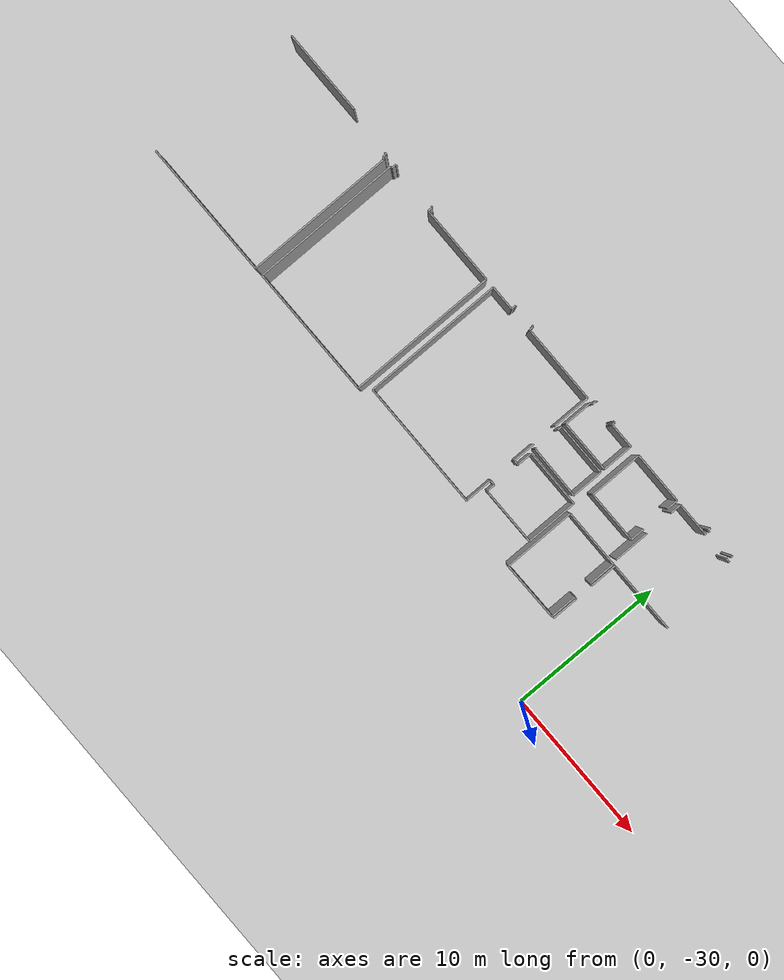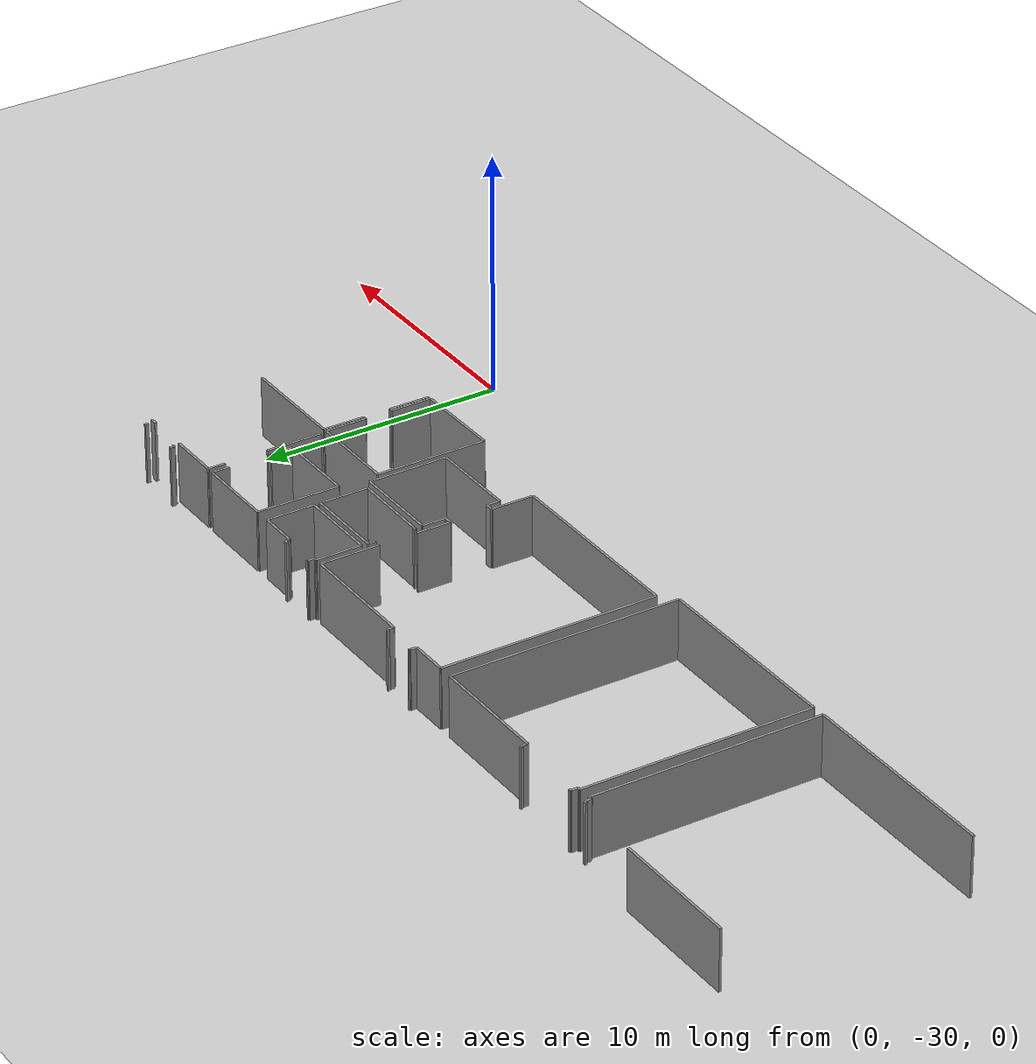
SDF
<sdf version="1.6">
 <world name="default">
  <model name="ground_plane">
   <static>1</static>
   <link name="link">
    <collision name="collision">
     <geometry><plane><normal>0 0 1</normal><size>100 100</size></plane></geometry>
     <surface><friction><ode><mu>100</mu><mu2>50</mu2></ode></friction></surface>
    </collision>
    <visual name="visual">
     <cast_shadows>0</cast_shadows>
     <geometry><plane><normal>0 0 1</normal><size>100 100</size></plane></geometry>
     <material>
      <script><uri>file://media/materials/scripts/gazebo.material</uri><name>Gazebo/Grey</name></script>
     </material>
    </visual>
   </link>
  </model>
  <model name="50045366">
   <static>1</static>
   <link name="Wall_91">
    <collision name="Wall_91_Collision">
     <geometry><box><size>5.46569966087 0.1 2.5</size></box></geometry>
     <pose>2.73284983044 0 1.25 0 0 0</pose>
    </collision>
    <visual name="Wall_91_Visual">
     <pose>2.73284983044 0 1.25 0 0 0</pose>
     <geometry><box><size>5.46569966087 0.1 2.5</size></box></geometry>
     <material>
      <script><uri>file://media/materials/scripts/gazebo.material</uri><name>Gazebo/Grey</name></script>
      <ambient>1 1 1 1</ambient>
     </material>
    </visual>
    <pose>22.1760170708 -40.7215709187 0 0 0 3.14159265359</pose>
   </link>
   <link name="Wall_123">
    <collision name="Wall_123_Collision">
     <geometry><box><size>0.133619539952 0.1 2.5</size></box></geometry>
     <pose>0.0668097699762 0 1.25 0 0 0</pose>
    </collision>
    <visual name="Wall_123_Visual">
     <pose>0.0668097699762 0 1.25 0 0 0</pose>
     <geometry><box><size>0.133619539952 0.1 2.5</size></box></geometry>
     <material>
      <script><uri>file://media/materials/scripts/gazebo.material</uri><name>Gazebo/Grey</name></script>
      <ambient>1 1 1 1</ambient>
     </material>
    </visual>
    <pose>25.1390176678 -40.9857616441 0 0 0 0.0</pose>
   </link>
   <link name="Wall_124">
    <collision name="Wall_124_Collision">
     <geometry><box><size>0.262412518576 0.1 2.5</size></box></geometry>
     <pose>0.131206259288 0 1.25 0 0 0</pose>
    </collision>
    <visual name="Wall_124_Visual">
     <pose>0.131206259288 0 1.25 0 0 0</pose>
     <geometry><box><size>0.262412518576 0.1 2.5</size></box></geometry>
     <material>
      <script><uri>file://media/materials/scripts/gazebo.material</uri><name>Gazebo/Grey</name></script>
      <ambient>1 1 1 1</ambient>
     </material>
    </visual>
    <pose>25.2726372077 -40.9857616441 0 0 0 -1.57079632679</pose>
   </link>
   <link name="Wall_125">
    <collision name="Wall_125_Collision">
     <geometry><box><size>0.133619539952 0.1 2.5</size></box></geometry>
     <pose>0.0668097699762 0 1.25 0 0 0</pose>
    </collision>
    <visual name="Wall_125_Visual">
     <pose>0.0668097699762 0 1.25 0 0 0</pose>
     <geometry><box><size>0.133619539952 0.1 2.5</size></box></geometry>
     <material>
      <script><uri>file://media/materials/scripts/gazebo.material</uri><name>Gazebo/Grey</name></script>
      <ambient>1 1 1 1</ambient>
     </material>
    </visual>
    <pose>25.2726372077 -41.2481741627 0 0 0 0.0</pose>
   </link>
   <link name="Wall_126">
    <collision name="Wall_126_Collision">
     <geometry><box><size>9.48901957298 0.1 2.5</size></box></geometry>
     <pose>4.74450978649 0 1.25 0 0 0</pose>
    </collision>
    <visual name="Wall_126_Visual">
     <pose>4.74450978649 0 1.25 0 0 0</pose>
     <geometry><box><size>9.48901957298 0.1 2.5</size></box></geometry>
     <material>
      <script><uri>file://media/materials/scripts/gazebo.material</uri><name>Gazebo/Grey</name></script>
      <ambient>1 1 1 1</ambient>
     </material>
    </visual>
    <pose>25.4062567477 -41.2481741627 0 0 0 -1.57079632679</pose>
   </link>
   <link name="Wall_127">
    <collision name="Wall_127_Collision">
     <geometry><box><size>8.69593944998 0.1 2.5</size></box></geometry>
     <pose>4.34796972499 0 1.25 0 0 0</pose>
    </collision>
    <visual name="Wall_127_Visual">
     <pose>4.34796972499 0 1.25 0 0 0</pose>
     <geometry><box><size>8.69593944998 0.1 2.5</size></box></geometry>
     <material>
      <script><uri>file://media/materials/scripts/gazebo.material</uri><name>Gazebo/Grey</name></script>
      <ambient>1 1 1 1</ambient>
     </material>
    </visual>
    <pose>25.4062567477 -50.7371937356 0 0 0 -3.14143198521</pose>
   </link>
   <link name="Wall_128">
    <collision name="Wall_128_Collision">
     <geometry><box><size>9.47085646061 0.1 2.5</size></box></geometry>
     <pose>4.7354282303 0 1.25 0 0 0</pose>
    </collision>
    <visual name="Wall_128_Visual">
     <pose>4.7354282303 0 1.25 0 0 0</pose>
     <geometry><box><size>9.47085646061 0.1 2.5</size></box></geometry>
     <material>
      <script><uri>file://media/materials/scripts/gazebo.material</uri><name>Gazebo/Grey</name></script>
      <ambient>1 1 1 1</ambient>
     </material>
    </visual>
    <pose>25.9512771335 -50.7154742097 0 0 0 1.57079632679</pose>
   </link>
   <link name="Wall_129">
    <collision name="Wall_129_Collision">
     <geometry><box><size>0.108597629904 0.1 2.5</size></box></geometry>
     <pose>0.0542988149522 0 1.25 0 0 0</pose>
    </collision>
    <visual name="Wall_129_Visual">
     <pose>0.0542988149522 0 1.25 0 0 0</pose>
     <geometry><box><size>0.108597629904 0.1 2.5</size></box></geometry>
     <material>
      <script><uri>file://media/materials/scripts/gazebo.material</uri><name>Gazebo/Grey</name></script>
      <ambient>1 1 1 1</ambient>
     </material>
    </visual>
    <pose>25.9512771335 -41.244617749 0 0 0 0.0</pose>
   </link>
   <link name="Wall_130">
    <collision name="Wall_130_Collision">
     <geometry><box><size>0.284132044557 0.1 2.5</size></box></geometry>
     <pose>0.142066022278 0 1.25 0 0 0</pose>
    </collision>
    <visual name="Wall_130_Visual">
     <pose>0.142066022278 0 1.25 0 0 0</pose>
     <geometry><box><size>0.284132044557 0.1 2.5</size></box></geometry>
     <material>
      <script><uri>file://media/materials/scripts/gazebo.material</uri><name>Gazebo/Grey</name></script>
      <ambient>1 1 1 1</ambient>
     </material>
    </visual>
    <pose>26.0598747634 -41.244617749 0 0 0 1.57079632679</pose>
   </link>
   <link name="Wall_131">
    <collision name="Wall_131_Collision">
     <geometry><box><size>0.0947530197762 0.1 2.5</size></box></geometry>
     <pose>0.0473765098881 0 1.25 0 0 0</pose>
    </collision>
    <visual name="Wall_131_Visual">
     <pose>0.0473765098881 0 1.25 0 0 0</pose>
     <geometry><box><size>0.0947530197762 0.1 2.5</size></box></geometry>
     <material>
      <script><uri>file://media/materials/scripts/gazebo.material</uri><name>Gazebo/Grey</name></script>
      <ambient>1 1 1 1</ambient>
     </material>
    </visual>
    <pose>26.0598747634 -40.9604857045 0 0 0 0.0</pose>
   </link>
   <link name="Wall_132">
    <collision name="Wall_132_Collision">
     <geometry><box><size>0.115202398039 0.1 2.5</size></box></geometry>
     <pose>0.0576011990195 0 1.25 0 0 0</pose>
    </collision>
    <visual name="Wall_132_Visual">
     <pose>0.0576011990195 0 1.25 0 0 0</pose>
     <geometry><box><size>0.115202398039 0.1 2.5</size></box></geometry>
     <material>
      <script><uri>file://media/materials/scripts/gazebo.material</uri><name>Gazebo/Grey</name></script>
      <ambient>1 1 1 1</ambient>
     </material>
    </visual>
    <pose>29.1197876313 -40.9604857045 0 0 0 0.0</pose>
   </link>
   <link name="Wall_133">
    <collision name="Wall_133_Collision">
     <geometry><box><size>0.289339650201 0.1 2.5</size></box></geometry>
     <pose>0.144669825101 0 1.25 0 0 0</pose>
    </collision>
    <visual name="Wall_133_Visual">
     <pose>0.144669825101 0 1.25 0 0 0</pose>
     <geometry><box><size>0.289339650201 0.1 2.5</size></box></geometry>
     <material>
      <script><uri>file://media/materials/scripts/gazebo.material</uri><name>Gazebo/Grey</name></script>
      <ambient>1 1 1 1</ambient>
     </material>
    </visual>
    <pose>29.2349900293 -40.9604857045 0 0 0 -1.57079632679</pose>
   </link>
   <link name="Wall_134">
    <collision name="Wall_134_Collision">
     <geometry><box><size>5.03257928897 0.1 2.5</size></box></geometry>
     <pose>2.51628964449 0 1.25 0 0 0</pose>
    </collision>
    <visual name="Wall_134_Visual">
     <pose>2.51628964449 0 1.25 0 0 0</pose>
     <geometry><box><size>5.03257928897 0.1 2.5</size></box></geometry>
     <material>
      <script><uri>file://media/materials/scripts/gazebo.material</uri><name>Gazebo/Grey</name></script>
      <ambient>1 1 1 1</ambient>
     </material>
    </visual>
    <pose>29.2349900293 -41.2498253547 0 0 0 0.0</pose>
   </link>
   <link name="Wall_135">
    <collision name="Wall_135_Collision">
     <geometry><box><size>9.4582819982 0.1 2.5</size></box></geometry>
     <pose>4.7291409991 0 1.25 0 0 0</pose>
    </collision>
    <visual name="Wall_135_Visual">
     <pose>4.7291409991 0 1.25 0 0 0</pose>
     <geometry><box><size>9.4582819982 0.1 2.5</size></box></geometry>
     <material>
      <script><uri>file://media/materials/scripts/gazebo.material</uri><name>Gazebo/Grey</name></script>
      <ambient>1 1 1 1</ambient>
     </material>
    </visual>
    <pose>34.2675693183 -41.2498253547 0 0 0 -1.57079632679</pose>
   </link>
   <link name="Wall_136">
    <collision name="Wall_136_Collision">
     <geometry><box><size>8.31629544769 0.1 2.5</size></box></geometry>
     <pose>4.15814772384 0 1.25 0 0 0</pose>
    </collision>
    <visual name="Wall_136_Visual">
     <pose>4.15814772384 0 1.25 0 0 0</pose>
     <geometry><box><size>8.31629544769 0.1 2.5</size></box></geometry>
     <material>
      <script><uri>file://media/materials/scripts/gazebo.material</uri><name>Gazebo/Grey</name></script>
      <ambient>1 1 1 1</ambient>
     </material>
    </visual>
    <pose>34.2675693183 -50.7081073529 0 0 0 -3.14070681953</pose>
   </link>
   <link name="Wall_137">
    <collision name="Wall_137_Collision">
     <geometry><box><size>8.89141507157 0.1 2.5</size></box></geometry>
     <pose>4.44570753579 0 1.25 0 0 0</pose>
    </collision>
    <visual name="Wall_137_Visual">
     <pose>4.44570753579 0 1.25 0 0 0</pose>
     <geometry><box><size>8.89141507157 0.1 2.5</size></box></geometry>
     <material>
      <script><uri>file://media/materials/scripts/gazebo.material</uri><name>Gazebo/Grey</name></script>
      <ambient>1 1 1 1</ambient>
     </material>
    </visual>
    <pose>34.8684762038 -50.1423835592 0 0 0 1.57079632679</pose>
   </link>
   <link name="Wall_138">
    <collision name="Wall_138_Collision">
     <geometry><box><size>1.59835388856 0.1 2.5</size></box></geometry>
     <pose>0.799176944279 0 1.25 0 0 0</pose>
    </collision>
    <visual name="Wall_138_Visual">
     <pose>0.799176944279 0 1.25 0 0 0</pose>
     <geometry><box><size>1.59835388856 0.1 2.5</size></box></geometry>
     <material>
      <script><uri>file://media/materials/scripts/gazebo.material</uri><name>Gazebo/Grey</name></script>
      <ambient>1 1 1 1</ambient>
     </material>
    </visual>
    <pose>34.8684762038 -41.2509684876 0 0 0 0.0</pose>
   </link>
   <link name="Wall_139">
    <collision name="Wall_139_Collision">
     <geometry><box><size>0.277781305966 0.1 2.5</size></box></geometry>
     <pose>0.138890652983 0 1.25 0 0 0</pose>
    </collision>
    <visual name="Wall_139_Visual">
     <pose>0.138890652983 0 1.25 0 0 0</pose>
     <geometry><box><size>0.277781305966 0.1 2.5</size></box></geometry>
     <material>
      <script><uri>file://media/materials/scripts/gazebo.material</uri><name>Gazebo/Grey</name></script>
      <ambient>1 1 1 1</ambient>
     </material>
    </visual>
    <pose>36.4668300923 -41.2509684876 0 0 0 1.57079632679</pose>
   </link>
   <link name="Wall_140">
    <collision name="Wall_140_Collision">
     <geometry><box><size>0.0694770801844 0.1 2.5</size></box></geometry>
     <pose>0.0347385400922 0 1.25 0 0 0</pose>
    </collision>
    <visual name="Wall_140_Visual">
     <pose>0.0347385400922 0 1.25 0 0 0</pose>
     <geometry><box><size>0.0694770801844 0.1 2.5</size></box></geometry>
     <material>
      <script><uri>file://media/materials/scripts/gazebo.material</uri><name>Gazebo/Grey</name></script>
      <ambient>1 1 1 1</ambient>
     </material>
    </visual>
    <pose>36.4668300923 -40.9731871817 0 0 0 0.0</pose>
   </link>
   <link name="Wall_141">
    <collision name="Wall_141_Collision">
     <geometry><box><size>0.101738832226 0.1 2.5</size></box></geometry>
     <pose>0.0508694161131 0 1.25 0 0 0</pose>
    </collision>
    <visual name="Wall_141_Visual">
     <pose>0.0508694161131 0 1.25 0 0 0</pose>
     <geometry><box><size>0.101738832226 0.1 2.5</size></box></geometry>
     <material>
      <script><uri>file://media/materials/scripts/gazebo.material</uri><name>Gazebo/Grey</name></script>
      <ambient>1 1 1 1</ambient>
     </material>
    </visual>
    <pose>37.9120041661 -40.9731871817 0 0 0 0.0</pose>
   </link>
   <link name="Wall_142">
    <collision name="Wall_142_Collision">
     <geometry><box><size>0.27244668555 0.1 2.5</size></box></geometry>
     <pose>0.136223342775 0 1.25 0 0 0</pose>
    </collision>
    <visual name="Wall_142_Visual">
     <pose>0.136223342775 0 1.25 0 0 0</pose>
     <geometry><box><size>0.27244668555 0.1 2.5</size></box></geometry>
     <material>
      <script><uri>file://media/materials/scripts/gazebo.material</uri><name>Gazebo/Grey</name></script>
      <ambient>1 1 1 1</ambient>
     </material>
    </visual>
    <pose>38.0137429983 -40.9731871817 0 0 0 -1.57079632679</pose>
   </link>
   <link name="Wall_143">
    <collision name="Wall_143_Collision">
     <geometry><box><size>5.03981913096 0.1 2.5</size></box></geometry>
     <pose>2.51990956548 0 1.25 0 0 0</pose>
    </collision>
    <visual name="Wall_143_Visual">
     <pose>2.51990956548 0 1.25 0 0 0</pose>
     <geometry><box><size>5.03981913096 0.1 2.5</size></box></geometry>
     <material>
      <script><uri>file://media/materials/scripts/gazebo.material</uri><name>Gazebo/Grey</name></script>
      <ambient>1 1 1 1</ambient>
     </material>
    </visual>
    <pose>38.0137429983 -41.2456338672 0 0 0 0.0</pose>
   </link>
   <link name="Wall_144">
    <collision name="Wall_144_Collision">
     <geometry><box><size>2.41823424064 0.1 2.5</size></box></geometry>
     <pose>1.20911712032 0 1.25 0 0 0</pose>
    </collision>
    <visual name="Wall_144_Visual">
     <pose>1.20911712032 0 1.25 0 0 0</pose>
     <geometry><box><size>2.41823424064 0.1 2.5</size></box></geometry>
     <material>
      <script><uri>file://media/materials/scripts/gazebo.material</uri><name>Gazebo/Grey</name></script>
      <ambient>1 1 1 1</ambient>
     </material>
    </visual>
    <pose>43.0535621293 -41.2456338672 0 0 0 -1.57079632679</pose>
   </link>
   <link name="Wall_145">
    <collision name="Wall_145_Collision">
     <geometry><box><size>1.41151515921 0.1 2.5</size></box></geometry>
     <pose>0.705757579607 0 1.25 0 0 0</pose>
    </collision>
    <visual name="Wall_145_Visual">
     <pose>0.705757579607 0 1.25 0 0 0</pose>
     <geometry><box><size>1.41151515921 0.1 2.5</size></box></geometry>
     <material>
      <script><uri>file://media/materials/scripts/gazebo.material</uri><name>Gazebo/Grey</name></script>
      <ambient>1 1 1 1</ambient>
     </material>
    </visual>
    <pose>43.0535621293 -45.2397403818 0 0 0 -1.57079632679</pose>
   </link>
   <link name="Wall_146">
    <collision name="Wall_146_Collision">
     <geometry><box><size>0.315885737511 0.1 2.5</size></box></geometry>
     <pose>0.157942868756 0 1.25 0 0 0</pose>
    </collision>
    <visual name="Wall_146_Visual">
     <pose>0.157942868756 0 1.25 0 0 0</pose>
     <geometry><box><size>0.315885737511 0.1 2.5</size></box></geometry>
     <material>
      <script><uri>file://media/materials/scripts/gazebo.material</uri><name>Gazebo/Grey</name></script>
      <ambient>1 1 1 1</ambient>
     </material>
    </visual>
    <pose>43.0535621293 -46.651255541 0 0 0 0.0</pose>
   </link>
   <link name="Wall_147">
    <collision name="Wall_147_Collision">
     <geometry><box><size>0.978013742998 0.1 2.5</size></box></geometry>
     <pose>0.489006871499 0 1.25 0 0 0</pose>
    </collision>
    <visual name="Wall_147_Visual">
     <pose>0.489006871499 0 1.25 0 0 0</pose>
     <geometry><box><size>0.978013742998 0.1 2.5</size></box></geometry>
     <material>
      <script><uri>file://media/materials/scripts/gazebo.material</uri><name>Gazebo/Grey</name></script>
      <ambient>1 1 1 1</ambient>
     </material>
    </visual>
    <pose>43.3694478668 -46.651255541 0 0 0 1.57079632679</pose>
   </link>
   <link name="Wall_148">
    <collision name="Wall_148_Collision">
     <geometry><box><size>3.6961298599 0.1 2.5</size></box></geometry>
     <pose>1.84806492995 0 1.25 0 0 0</pose>
    </collision>
    <visual name="Wall_148_Visual">
     <pose>1.84806492995 0 1.25 0 0 0</pose>
     <geometry><box><size>3.6961298599 0.1 2.5</size></box></geometry>
     <material>
      <script><uri>file://media/materials/scripts/gazebo.material</uri><name>Gazebo/Grey</name></script>
      <ambient>1 1 1 1</ambient>
     </material>
    </visual>
    <pose>43.3694478668 -45.673241798 0 0 0 0.0</pose>
   </link>
   <link name="Wall_149">
    <collision name="Wall_149_Collision">
     <geometry><box><size>3.26427963572 0.1 2.5</size></box></geometry>
     <pose>1.63213981786 0 1.25 0 0 0</pose>
    </collision>
    <visual name="Wall_149_Visual">
     <pose>1.63213981786 0 1.25 0 0 0</pose>
     <geometry><box><size>3.26427963572 0.1 2.5</size></box></geometry>
     <material>
      <script><uri>file://media/materials/scripts/gazebo.material</uri><name>Gazebo/Grey</name></script>
      <ambient>1 1 1 1</ambient>
     </material>
    </visual>
    <pose>47.0655777267 -45.673241798 0 0 0 -1.57079632679</pose>
   </link>
   <link name="Wall_150">
    <collision name="Wall_150_Collision">
     <geometry><box><size>3.69485971218 0.1 2.5</size></box></geometry>
     <pose>1.84742985609 0 1.25 0 0 0</pose>
    </collision>
    <visual name="Wall_150_Visual">
     <pose>1.84742985609 0 1.25 0 0 0</pose>
     <geometry><box><size>3.69485971218 0.1 2.5</size></box></geometry>
     <material>
      <script><uri>file://media/materials/scripts/gazebo.material</uri><name>Gazebo/Grey</name></script>
      <ambient>1 1 1 1</ambient>
     </material>
    </visual>
    <pose>47.0655777267 -48.9375214337 0 0 0 3.14159265359</pose>
   </link>
   <link name="Wall_151">
    <collision name="Wall_151_Collision">
     <geometry><box><size>0.540574868857 0.1 2.5</size></box></geometry>
     <pose>0.270287434429 0 1.25 0 0 0</pose>
    </collision>
    <visual name="Wall_151_Visual">
     <pose>0.270287434429 0 1.25 0 0 0</pose>
     <geometry><box><size>0.540574868857 0.1 2.5</size></box></geometry>
     <material>
      <script><uri>file://media/materials/scripts/gazebo.material</uri><name>Gazebo/Grey</name></script>
      <ambient>1 1 1 1</ambient>
     </material>
    </visual>
    <pose>43.3707180145 -48.9375214337 0 0 0 1.57079632679</pose>
   </link>
   <link name="Wall_152">
    <collision name="Wall_152_Collision">
     <geometry><box><size>0.335064968056 0.1 2.5</size></box></geometry>
     <pose>0.167532484028 0 1.25 0 0 0</pose>
    </collision>
    <visual name="Wall_152_Visual">
     <pose>0.167532484028 0 1.25 0 0 0</pose>
     <geometry><box><size>0.335064968056 0.1 2.5</size></box></geometry>
     <material>
      <script><uri>file://media/materials/scripts/gazebo.material</uri><name>Gazebo/Grey</name></script>
      <ambient>1 1 1 1</ambient>
     </material>
    </visual>
    <pose>43.3707180145 -48.3969465649 0 0 0 3.14159265359</pose>
   </link>
   <link name="Wall_153">
    <collision name="Wall_153_Collision">
     <geometry><box><size>1.75991667831 0.1 2.5</size></box></geometry>
     <pose>0.879958339155 0 1.25 0 0 0</pose>
    </collision>
    <visual name="Wall_153_Visual">
     <pose>0.879958339155 0 1.25 0 0 0</pose>
     <geometry><box><size>1.75991667831 0.1 2.5</size></box></geometry>
     <material>
      <script><uri>file://media/materials/scripts/gazebo.material</uri><name>Gazebo/Grey</name></script>
      <ambient>1 1 1 1</ambient>
     </material>
    </visual>
    <pose>43.0356530464 -48.3969465649 0 0 0 -1.57079632679</pose>
   </link>
   <link name="Wall_154">
    <collision name="Wall_154_Collision">
     <geometry><box><size>8.16718967826 0.1 2.5</size></box></geometry>
     <pose>4.08359483913 0 1.25 0 0 0</pose>
    </collision>
    <visual name="Wall_154_Visual">
     <pose>4.08359483913 0 1.25 0 0 0</pose>
     <geometry><box><size>8.16718967826 0.1 2.5</size></box></geometry>
     <material>
      <script><uri>file://media/materials/scripts/gazebo.material</uri><name>Gazebo/Grey</name></script>
      <ambient>1 1 1 1</ambient>
     </material>
    </visual>
    <pose>43.0356530464 -50.1568632432 0 0 0 3.13981974367</pose>
   </link>
   <link name="Wall_155">
    <collision name="Wall_155_Collision">
     <geometry><box><size>1.86978445593 0.1 2.5</size></box></geometry>
     <pose>0.934892227966 0 1.25 0 0 0</pose>
    </collision>
    <visual name="Wall_155_Visual">
     <pose>0.934892227966 0 1.25 0 0 0</pose>
     <geometry><box><size>1.86978445593 0.1 2.5</size></box></geometry>
     <material>
      <script><uri>file://media/materials/scripts/gazebo.material</uri><name>Gazebo/Grey</name></script>
      <ambient>1 1 1 1</ambient>
     </material>
    </visual>
    <pose>43.3627160839 -43.1226581651 0 0 0 1.57079632679</pose>
   </link>
   <link name="Wall_156">
    <collision name="Wall_156_Collision">
     <geometry><box><size>0.117742693475 0.1 2.5</size></box></geometry>
     <pose>0.0588713467376 0 1.25 0 0 0</pose>
    </collision>
    <visual name="Wall_156_Visual">
     <pose>0.0588713467376 0 1.25 0 0 0</pose>
     <geometry><box><size>0.117742693475 0.1 2.5</size></box></geometry>
     <material>
      <script><uri>file://media/materials/scripts/gazebo.material</uri><name>Gazebo/Grey</name></script>
      <ambient>1 1 1 1</ambient>
     </material>
    </visual>
    <pose>43.3627160839 -41.2528737092 0 0 0 0.0</pose>
   </link>
   <link name="Wall_157">
    <collision name="Wall_157_Collision">
     <geometry><box><size>0.263555651522 0.1 2.5</size></box></geometry>
     <pose>0.131777825761 0 1.25 0 0 0</pose>
    </collision>
    <visual name="Wall_157_Visual">
     <pose>0.131777825761 0 1.25 0 0 0</pose>
     <geometry><box><size>0.263555651522 0.1 2.5</size></box></geometry>
     <material>
      <script><uri>file://media/materials/scripts/gazebo.material</uri><name>Gazebo/Grey</name></script>
      <ambient>1 1 1 1</ambient>
     </material>
    </visual>
    <pose>43.4804587774 -41.2528737092 0 0 0 1.57079632679</pose>
   </link>
   <link name="Wall_158">
    <collision name="Wall_158_Collision">
     <geometry><box><size>0.0824325869099 0.1 2.5</size></box></geometry>
     <pose>0.0412162934549 0 1.25 0 0 0</pose>
    </collision>
    <visual name="Wall_158_Visual">
     <pose>0.0412162934549 0 1.25 0 0 0</pose>
     <geometry><box><size>0.0824325869099 0.1 2.5</size></box></geometry>
     <material>
      <script><uri>file://media/materials/scripts/gazebo.material</uri><name>Gazebo/Grey</name></script>
      <ambient>1 1 1 1</ambient>
     </material>
    </visual>
    <pose>43.4804587774 -40.9893180577 0 0 0 0.0</pose>
   </link>
   <link name="Wall_159">
    <collision name="Wall_159_Collision">
     <geometry><box><size>0.138954160369 0.1 2.5</size></box></geometry>
     <pose>0.0694770801844 0 1.25 0 0 0</pose>
    </collision>
    <visual name="Wall_159_Visual">
     <pose>0.0694770801844 0 1.25 0 0 0</pose>
     <geometry><box><size>0.138954160369 0.1 2.5</size></box></geometry>
     <material>
      <script><uri>file://media/materials/scripts/gazebo.material</uri><name>Gazebo/Grey</name></script>
      <ambient>1 1 1 1</ambient>
     </material>
    </visual>
    <pose>44.9603078838 -40.9893180577 0 0 0 0.0</pose>
   </link>
   <link name="Wall_160">
    <collision name="Wall_160_Collision">
     <geometry><box><size>0.17324814876 0.1 2.5</size></box></geometry>
     <pose>0.0866240743798 0 1.25 0 0 0</pose>
    </collision>
    <visual name="Wall_160_Visual">
     <pose>0.0866240743798 0 1.25 0 0 0</pose>
     <geometry><box><size>0.17324814876 0.1 2.5</size></box></geometry>
     <material>
      <script><uri>file://media/materials/scripts/gazebo.material</uri><name>Gazebo/Grey</name></script>
      <ambient>1 1 1 1</ambient>
     </material>
    </visual>
    <pose>45.0992620442 -40.9893180577 0 0 0 -1.57079632679</pose>
   </link>
   <link name="Wall_161">
    <collision name="Wall_161_Collision">
     <geometry><box><size>1.60406955329 0.1 2.5</size></box></geometry>
     <pose>0.802034776645 0 1.25 0 0 0</pose>
    </collision>
    <visual name="Wall_161_Visual">
     <pose>0.802034776645 0 1.25 0 0 0</pose>
     <geometry><box><size>1.60406955329 0.1 2.5</size></box></geometry>
     <material>
      <script><uri>file://media/materials/scripts/gazebo.material</uri><name>Gazebo/Grey</name></script>
      <ambient>1 1 1 1</ambient>
     </material>
    </visual>
    <pose>45.0992620442 -41.1625662064 0 0 0 0.0</pose>
   </link>
   <link name="Wall_162">
    <collision name="Wall_162_Collision">
     <geometry><box><size>1.95666255986 0.1 2.5</size></box></geometry>
     <pose>0.978331279928 0 1.25 0 0 0</pose>
    </collision>
    <visual name="Wall_162_Visual">
     <pose>0.978331279928 0 1.25 0 0 0</pose>
     <geometry><box><size>1.95666255986 0.1 2.5</size></box></geometry>
     <material>
      <script><uri>file://media/materials/scripts/gazebo.material</uri><name>Gazebo/Grey</name></script>
      <ambient>1 1 1 1</ambient>
     </material>
    </visual>
    <pose>46.7033315975 -41.1625662064 0 0 0 -1.57079632679</pose>
   </link>
   <link name="Wall_163">
    <collision name="Wall_163_Collision">
     <geometry><box><size>3.34061727385 0.1 2.5</size></box></geometry>
     <pose>1.67030863693 0 1.25 0 0 0</pose>
    </collision>
    <visual name="Wall_163_Visual">
     <pose>1.67030863693 0 1.25 0 0 0</pose>
     <geometry><box><size>3.34061727385 0.1 2.5</size></box></geometry>
     <material>
      <script><uri>file://media/materials/scripts/gazebo.material</uri><name>Gazebo/Grey</name></script>
      <ambient>1 1 1 1</ambient>
     </material>
    </visual>
    <pose>46.7033315975 -43.1192287663 0 0 0 -3.14056607701</pose>
   </link>
   <link name="Wall_164">
    <collision name="Wall_164_Collision">
     <geometry><box><size>0.087894222098 0.1 2.5</size></box></geometry>
     <pose>0.043947111049 0 1.25 0 0 0</pose>
    </collision>
    <visual name="Wall_164_Visual">
     <pose>0.043947111049 0 1.25 0 0 0</pose>
     <geometry><box><size>0.087894222098 0.1 2.5</size></box></geometry>
     <material>
      <script><uri>file://media/materials/scripts/gazebo.material</uri><name>Gazebo/Grey</name></script>
      <ambient>1 1 1 1</ambient>
     </material>
    </visual>
    <pose>43.3267709035 -45.3438924947 0 0 0 1.57079632679</pose>
   </link>
   <link name="Wall_165">
    <collision name="Wall_165_Collision">
     <geometry><box><size>0.297849639913 0.1 2.5</size></box></geometry>
     <pose>0.148924819957 0 1.25 0 0 0</pose>
    </collision>
    <visual name="Wall_165_Visual">
     <pose>0.148924819957 0 1.25 0 0 0</pose>
     <geometry><box><size>0.297849639913 0.1 2.5</size></box></geometry>
     <material>
      <script><uri>file://media/materials/scripts/gazebo.material</uri><name>Gazebo/Grey</name></script>
      <ambient>1 1 1 1</ambient>
     </material>
    </visual>
    <pose>43.3267709035 -43.6797449543 0 0 0 1.57079632679</pose>
   </link>
   <link name="Wall_166">
    <collision name="Wall_166_Collision">
     <geometry><box><size>3.37821188604 0.1 2.5</size></box></geometry>
     <pose>1.68910594302 0 1.25 0 0 0</pose>
    </collision>
    <visual name="Wall_166_Visual">
     <pose>1.68910594302 0 1.25 0 0 0</pose>
     <geometry><box><size>3.37821188604 0.1 2.5</size></box></geometry>
     <material>
      <script><uri>file://media/materials/scripts/gazebo.material</uri><name>Gazebo/Grey</name></script>
      <ambient>1 1 1 1</ambient>
     </material>
    </visual>
    <pose>43.3267709035 -43.3818953144 0 0 0 0.0</pose>
   </link>
   <link name="Wall_167">
    <collision name="Wall_167_Collision">
     <geometry><box><size>1.99768833115 0.1 2.5</size></box></geometry>
     <pose>0.998844165576 0 1.25 0 0 0</pose>
    </collision>
    <visual name="Wall_167_Visual">
     <pose>0.998844165576 0 1.25 0 0 0</pose>
     <geometry><box><size>1.99768833115 0.1 2.5</size></box></geometry>
     <material>
      <script><uri>file://media/materials/scripts/gazebo.material</uri><name>Gazebo/Grey</name></script>
      <ambient>1 1 1 1</ambient>
     </material>
    </visual>
    <pose>46.7049827895 -43.3818953144 0 0 0 -1.57079632679</pose>
   </link>
   <link name="Wall_168">
    <collision name="Wall_168_Collision">
     <geometry><box><size>3.37840042109 0.1 2.5</size></box></geometry>
     <pose>1.68920021055 0 1.25 0 0 0</pose>
    </collision>
    <visual name="Wall_168_Visual">
     <pose>1.68920021055 0 1.25 0 0 0</pose>
     <geometry><box><size>3.37840042109 0.1 2.5</size></box></geometry>
     <material>
      <script><uri>file://media/materials/scripts/gazebo.material</uri><name>Gazebo/Grey</name></script>
      <ambient>1 1 1 1</ambient>
     </material>
    </visual>
    <pose>46.7049827895 -45.3795836456 0 0 0 3.13102794533</pose>
   </link>
   <link name="Wall_222">
    <collision name="Wall_222_Collision">
     <geometry><box><size>0.182393212331 0.1 2.5</size></box></geometry>
     <pose>0.0911966061653 0 1.25 0 0 0</pose>
    </collision>
    <visual name="Wall_222_Visual">
     <pose>0.0911966061653 0 1.25 0 0 0</pose>
     <geometry><box><size>0.182393212331 0.1 2.5</size></box></geometry>
     <material>
      <script><uri>file://media/materials/scripts/gazebo.material</uri><name>Gazebo/Grey</name></script>
      <ambient>1 1 1 1</ambient>
     </material>
    </visual>
    <pose>53.0821404529 -40.8944380231 0 0 0 1.57079632679</pose>
   </link>
   <link name="Wall_252">
    <collision name="Wall_252_Collision">
     <geometry><box><size>0.147718179624 0.1 2.5</size></box></geometry>
     <pose>0.0738590898121 0 1.25 0 0 0</pose>
    </collision>
    <visual name="Wall_252_Visual">
     <pose>0.0738590898121 0 1.25 0 0 0</pose>
     <geometry><box><size>0.147718179624 0.1 2.5</size></box></geometry>
     <material>
      <script><uri>file://media/materials/scripts/gazebo.material</uri><name>Gazebo/Grey</name></script>
      <ambient>1 1 1 1</ambient>
     </material>
    </visual>
    <pose>55.070429691 -40.7622156457 0 0 0 -1.57079632679</pose>
   </link>
   <link name="Wall_254">
    <collision name="Wall_254_Collision">
     <geometry><box><size>0.13199200062 0.1 2.5</size></box></geometry>
     <pose>0.0659960003098 0 1.25 0 0 0</pose>
    </collision>
    <visual name="Wall_254_Visual">
     <pose>0.0659960003098 0 1.25 0 0 0</pose>
     <geometry><box><size>0.13199200062 0.1 2.5</size></box></geometry>
     <material>
      <script><uri>file://media/materials/scripts/gazebo.material</uri><name>Gazebo/Grey</name></script>
      <ambient>1 1 1 1</ambient>
     </material>
    </visual>
    <pose>53.2132196975 -40.9099338253 0 0 0 3.02392173233</pose>
   </link>
   <link name="Wall_274">
    <collision name="Wall_274_Collision">
     <geometry><box><size>2.26657860309 0.1 2.5</size></box></geometry>
     <pose>1.13328930155 0 1.25 0 0 0</pose>
    </collision>
    <visual name="Wall_274_Visual">
     <pose>1.13328930155 0 1.25 0 0 0</pose>
     <geometry><box><size>2.26657860309 0.1 2.5</size></box></geometry>
     <material>
      <script><uri>file://media/materials/scripts/gazebo.material</uri><name>Gazebo/Grey</name></script>
      <ambient>1 1 1 1</ambient>
     </material>
    </visual>
    <pose>50.9979550622 -45.9078380816 0 0 0 1.57079632679</pose>
   </link>
   <link name="Wall_275">
    <collision name="Wall_275_Collision">
     <geometry><box><size>0.711663766496 0.1 2.5</size></box></geometry>
     <pose>0.355831883248 0 1.25 0 0 0</pose>
    </collision>
    <visual name="Wall_275_Visual">
     <pose>0.355831883248 0 1.25 0 0 0</pose>
     <geometry><box><size>0.711663766496 0.1 2.5</size></box></geometry>
     <material>
      <script><uri>file://media/materials/scripts/gazebo.material</uri><name>Gazebo/Grey</name></script>
      <ambient>1 1 1 1</ambient>
     </material>
    </visual>
    <pose>50.9979550622 -41.8701655002 0 0 0 1.57079632679</pose>
   </link>
   <link name="Wall_276">
    <collision name="Wall_276_Collision">
     <geometry><box><size>2.20078495129 0.1 2.5</size></box></geometry>
     <pose>1.10039247564 0 1.25 0 0 0</pose>
    </collision>
    <visual name="Wall_276_Visual">
     <pose>1.10039247564 0 1.25 0 0 0</pose>
     <geometry><box><size>2.20078495129 0.1 2.5</size></box></geometry>
     <material>
      <script><uri>file://media/materials/scripts/gazebo.material</uri><name>Gazebo/Grey</name></script>
      <ambient>1 1 1 1</ambient>
     </material>
    </visual>
    <pose>50.9979550622 -41.1585017338 0 0 0 0.0</pose>
   </link>
   <link name="Wall_277">
    <collision name="Wall_277_Collision">
     <geometry><box><size>0.283878015013 0.1 2.5</size></box></geometry>
     <pose>0.141939007507 0 1.25 0 0 0</pose>
    </collision>
    <visual name="Wall_277_Visual">
     <pose>0.141939007507 0 1.25 0 0 0</pose>
     <geometry><box><size>0.283878015013 0.1 2.5</size></box></geometry>
     <material>
      <script><uri>file://media/materials/scripts/gazebo.material</uri><name>Gazebo/Grey</name></script>
      <ambient>1 1 1 1</ambient>
     </material>
    </visual>
    <pose>54.9537031157 -41.1585017338 0 0 0 0.0</pose>
   </link>
   <link name="Wall_282">
    <collision name="Wall_282_Collision">
     <geometry><box><size>3.39065933368 0.1 2.5</size></box></geometry>
     <pose>1.69532966684 0 1.25 0 0 0</pose>
    </collision>
    <visual name="Wall_282_Visual">
     <pose>1.69532966684 0 1.25 0 0 0</pose>
     <geometry><box><size>3.39065933368 0.1 2.5</size></box></geometry>
     <material>
      <script><uri>file://media/materials/scripts/gazebo.material</uri><name>Gazebo/Grey</name></script>
      <ambient>1 1 1 1</ambient>
     </material>
    </visual>
    <pose>47.3705401938 -44.5386188414 0 0 0 1.57079632679</pose>
   </link>
   <link name="Wall_283">
    <collision name="Wall_283_Collision">
     <geometry><box><size>3.3238495637 0.1 2.5</size></box></geometry>
     <pose>1.66192478185 0 1.25 0 0 0</pose>
    </collision>
    <visual name="Wall_283_Visual">
     <pose>1.66192478185 0 1.25 0 0 0</pose>
     <geometry><box><size>3.3238495637 0.1 2.5</size></box></geometry>
     <material>
      <script><uri>file://media/materials/scripts/gazebo.material</uri><name>Gazebo/Grey</name></script>
      <ambient>1 1 1 1</ambient>
     </material>
    </visual>
    <pose>47.3705401938 -41.1479595077 0 0 0 0.0</pose>
   </link>
   <link name="Wall_284">
    <collision name="Wall_284_Collision">
     <geometry><box><size>0.718268534631 0.1 2.5</size></box></geometry>
     <pose>0.359134267315 0 1.25 0 0 0</pose>
    </collision>
    <visual name="Wall_284_Visual">
     <pose>0.359134267315 0 1.25 0 0 0</pose>
     <geometry><box><size>0.718268534631 0.1 2.5</size></box></geometry>
     <material>
      <script><uri>file://media/materials/scripts/gazebo.material</uri><name>Gazebo/Grey</name></script>
      <ambient>1 1 1 1</ambient>
     </material>
    </visual>
    <pose>50.6943897575 -41.1479595077 0 0 0 -1.57079632679</pose>
   </link>
   <link name="Wall_285">
    <collision name="Wall_285_Collision">
     <geometry><box><size>0.910314869619 0.1 2.5</size></box></geometry>
     <pose>0.45515743481 0 1.25 0 0 0</pose>
    </collision>
    <visual name="Wall_285_Visual">
     <pose>0.45515743481 0 1.25 0 0 0</pose>
     <geometry><box><size>0.910314869619 0.1 2.5</size></box></geometry>
     <material>
      <script><uri>file://media/materials/scripts/gazebo.material</uri><name>Gazebo/Grey</name></script>
      <ambient>1 1 1 1</ambient>
     </material>
    </visual>
    <pose>50.6943897575 -43.6199209968 0 0 0 -1.57079632679</pose>
   </link>
   <link name="Wall_286">
    <collision name="Wall_286_Collision">
     <geometry><box><size>3.3238601349 0.1 2.5</size></box></geometry>
     <pose>1.66193006745 0 1.25 0 0 0</pose>
    </collision>
    <visual name="Wall_286_Visual">
     <pose>1.66193006745 0 1.25 0 0 0</pose>
     <geometry><box><size>3.3238601349 0.1 2.5</size></box></geometry>
     <material>
      <script><uri>file://media/materials/scripts/gazebo.material</uri><name>Gazebo/Grey</name></script>
      <ambient>1 1 1 1</ambient>
     </material>
    </visual>
    <pose>50.6943897575 -44.5302358664 0 0 0 -3.13907059084</pose>
   </link>
   <link name="Wall_287">
    <collision name="Wall_287_Collision">
     <geometry><box><size>4.55919523441 0.1 2.5</size></box></geometry>
     <pose>2.2795976172 0 1.25 0 0 0</pose>
    </collision>
    <visual name="Wall_287_Visual">
     <pose>2.2795976172 0 1.25 0 0 0</pose>
     <geometry><box><size>4.55919523441 0.1 2.5</size></box></geometry>
     <material>
      <script><uri>file://media/materials/scripts/gazebo.material</uri><name>Gazebo/Grey</name></script>
      <ambient>1 1 1 1</ambient>
     </material>
    </visual>
    <pose>47.3551714064 -50.7531975969 0 0 0 1.57079632679</pose>
   </link>
   <link name="Wall_288">
    <collision name="Wall_288_Collision">
     <geometry><box><size>3.72928071535 0.1 2.5</size></box></geometry>
     <pose>1.86464035767 0 1.25 0 0 0</pose>
    </collision>
    <visual name="Wall_288_Visual">
     <pose>1.86464035767 0 1.25 0 0 0</pose>
     <geometry><box><size>3.72928071535 0.1 2.5</size></box></geometry>
     <material>
      <script><uri>file://media/materials/scripts/gazebo.material</uri><name>Gazebo/Grey</name></script>
      <ambient>1 1 1 1</ambient>
     </material>
    </visual>
    <pose>47.3551714064 -46.1940023625 0 0 0 0.0</pose>
   </link>
   <link name="Wall_289">
    <collision name="Wall_289_Collision">
     <geometry><box><size>1.6923448197 0.1 2.5</size></box></geometry>
     <pose>0.846172409851 0 1.25 0 0 0</pose>
    </collision>
    <visual name="Wall_289_Visual">
     <pose>0.846172409851 0 1.25 0 0 0</pose>
     <geometry><box><size>1.6923448197 0.1 2.5</size></box></geometry>
     <material>
      <script><uri>file://media/materials/scripts/gazebo.material</uri><name>Gazebo/Grey</name></script>
      <ambient>1 1 1 1</ambient>
     </material>
    </visual>
    <pose>51.0844521218 -46.1940023625 0 0 0 -1.57079632679</pose>
   </link>
   <link name="Wall_290">
    <collision name="Wall_290_Collision">
     <geometry><box><size>0.134381628583 0.1 2.5</size></box></geometry>
     <pose>0.0671908142917 0 1.25 0 0 0</pose>
    </collision>
    <visual name="Wall_290_Visual">
     <pose>0.0671908142917 0 1.25 0 0 0</pose>
     <geometry><box><size>0.134381628583 0.1 2.5</size></box></geometry>
     <material>
      <script><uri>file://media/materials/scripts/gazebo.material</uri><name>Gazebo/Grey</name></script>
      <ambient>1 1 1 1</ambient>
     </material>
    </visual>
    <pose>51.0844521218 -47.8863471822 0 0 0 0.0</pose>
   </link>
   <link name="Wall_291">
    <collision name="Wall_291_Collision">
     <geometry><box><size>1.69996570601 0.1 2.5</size></box></geometry>
     <pose>0.849982853006 0 1.25 0 0 0</pose>
    </collision>
    <visual name="Wall_291_Visual">
     <pose>0.849982853006 0 1.25 0 0 0</pose>
     <geometry><box><size>1.69996570601 0.1 2.5</size></box></geometry>
     <material>
      <script><uri>file://media/materials/scripts/gazebo.material</uri><name>Gazebo/Grey</name></script>
      <ambient>1 1 1 1</ambient>
     </material>
    </visual>
    <pose>51.2188337504 -47.8863471822 0 0 0 1.57079632679</pose>
   </link>
   <link name="Wall_292">
    <collision name="Wall_292_Collision">
     <geometry><box><size>4.58116878993 0.1 2.5</size></box></geometry>
     <pose>2.29058439497 0 1.25 0 0 0</pose>
    </collision>
    <visual name="Wall_292_Visual">
     <pose>2.29058439497 0 1.25 0 0 0</pose>
     <geometry><box><size>4.58116878993 0.1 2.5</size></box></geometry>
     <material>
      <script><uri>file://media/materials/scripts/gazebo.material</uri><name>Gazebo/Grey</name></script>
      <ambient>1 1 1 1</ambient>
     </material>
    </visual>
    <pose>51.2188337504 -46.1863814762 0 0 0 0.0</pose>
   </link>
   <link name="Wall_296">
    <collision name="Wall_296_Collision">
     <geometry><box><size>1.676594988 0.1 2.5</size></box></geometry>
     <pose>0.838297493999 0 1.25 0 0 0</pose>
    </collision>
    <visual name="Wall_296_Visual">
     <pose>0.838297493999 0 1.25 0 0 0</pose>
     <geometry><box><size>1.676594988 0.1 2.5</size></box></geometry>
     <material>
      <script><uri>file://media/materials/scripts/gazebo.material</uri><name>Gazebo/Grey</name></script>
      <ambient>1 1 1 1</ambient>
     </material>
    </visual>
    <pose>51.2189607651 -50.7157282392 0 0 0 1.57079632679</pose>
   </link>
   <link name="Wall_297">
    <collision name="Wall_297_Collision">
     <geometry><box><size>0.127014771818 0.1 2.5</size></box></geometry>
     <pose>0.063507385909 0 1.25 0 0 0</pose>
    </collision>
    <visual name="Wall_297_Visual">
     <pose>0.063507385909 0 1.25 0 0 0</pose>
     <geometry><box><size>0.127014771818 0.1 2.5</size></box></geometry>
     <material>
      <script><uri>file://media/materials/scripts/gazebo.material</uri><name>Gazebo/Grey</name></script>
      <ambient>1 1 1 1</ambient>
     </material>
    </visual>
    <pose>51.2189607651 -49.0391332512 0 0 0 3.14159265359</pose>
   </link>
   <link name="Wall_298">
    <collision name="Wall_298_Collision">
     <geometry><box><size>1.676594988 0.1 2.5</size></box></geometry>
     <pose>0.838297493999 0 1.25 0 0 0</pose>
    </collision>
    <visual name="Wall_298_Visual">
     <pose>0.838297493999 0 1.25 0 0 0</pose>
     <geometry><box><size>1.676594988 0.1 2.5</size></box></geometry>
     <material>
      <script><uri>file://media/materials/scripts/gazebo.material</uri><name>Gazebo/Grey</name></script>
      <ambient>1 1 1 1</ambient>
     </material>
    </visual>
    <pose>51.0919459933 -49.0391332512 0 0 0 -1.57079632679</pose>
   </link>
   <link name="Wall_299">
    <collision name="Wall_299_Collision">
     <geometry><box><size>3.73696243839 0.1 2.5</size></box></geometry>
     <pose>1.8684812192 0 1.25 0 0 0</pose>
    </collision>
    <visual name="Wall_299_Visual">
     <pose>1.8684812192 0 1.25 0 0 0</pose>
     <geometry><box><size>3.73696243839 0.1 2.5</size></box></geometry>
     <material>
      <script><uri>file://media/materials/scripts/gazebo.material</uri><name>Gazebo/Grey</name></script>
      <ambient>1 1 1 1</ambient>
     </material>
    </visual>
    <pose>51.0919459933 -50.7157282392 0 0 0 -3.13156579724</pose>
   </link>
   <pose>-54.1 25.3531975969 0 0 0 0</pose>
  </model>
 </world>
</sdf>
